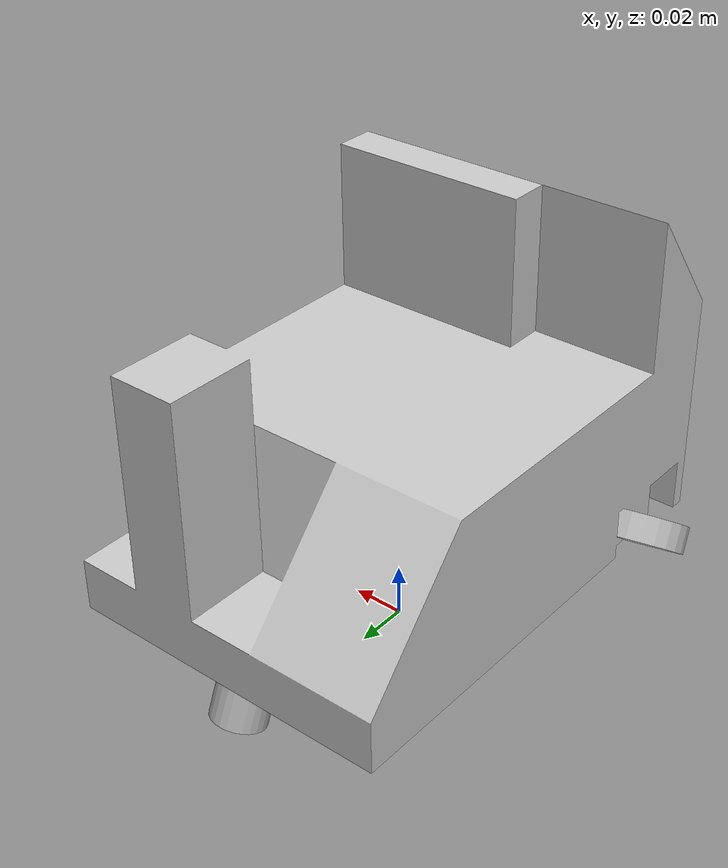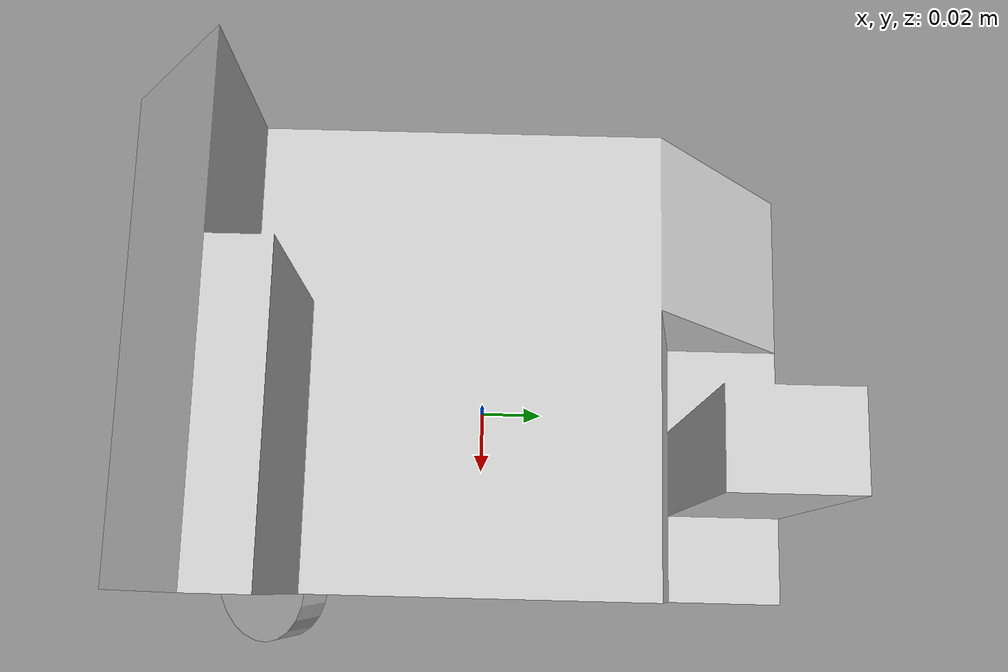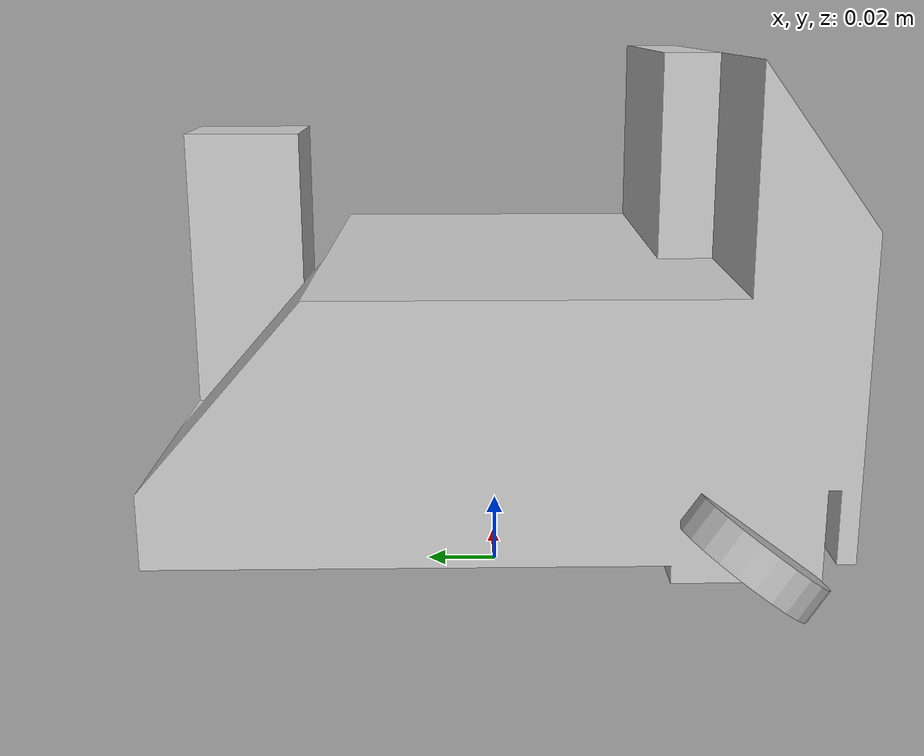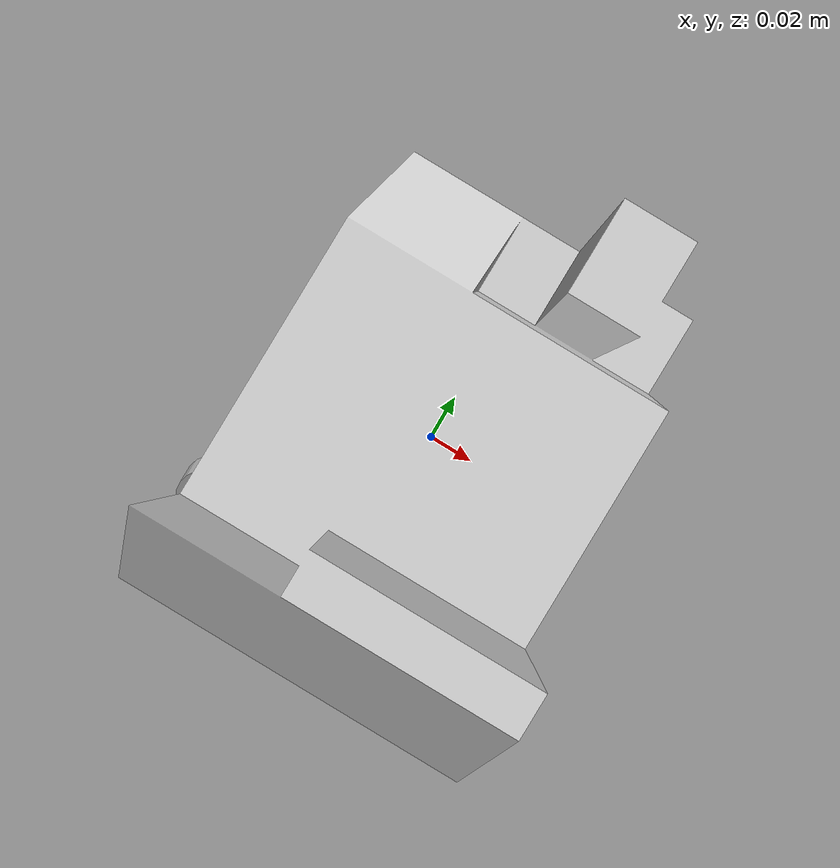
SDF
<sdf version='1.6'>
  <model name='karcher_urdf'>
    <link name='chassis'>
      <pose frame=''>0 0 0 0 -0 0</pose>
      <inertial>
        <pose frame=''>0 0 0 0 -0 0</pose>
        <mass>725</mass>
        <inertia>
          <ixx>322.8</ixx>
          <ixy>0</ixy>
          <ixz>0</ixz>
          <iyy>221.43</iyy>
          <iyz>0</iyz>
          <izz>290.15</izz>
        </inertia>
      </inertial>
      <collision name='chassis_collision_collision'>
        <pose frame=''>0 0 0.09 0 -0 0</pose>
        <geometry>
          <mesh>
            <scale>0.1 0.1 0.1</scale>
            <uri>model://karcher_urdf/meshes/karcher_model.dae</uri>
          </mesh>
        </geometry>
      </collision>
      <visual name='chassis_visual_visual'>
        <pose frame=''>0 0 0.09 0 -0 0</pose>
        <geometry>
          <mesh>
            <scale>0.1 0.1 0.1</scale>
            <uri>model://karcher_urdf/meshes/karcher_model.dae</uri>
          </mesh>
        </geometry>
      </visual>
    </link>
    <link name='front_dummy_link'>
      <pose frame=''>0 0.08 0.0175 0 0.000019 0</pose>
      <inertial>
        <pose frame=''>0 0 0 0 -0 0</pose>
        <mass>0.1</mass>
        <inertia>
          <ixx>0</ixx>
          <ixy>0</ixy>
          <ixz>0</ixz>
          <iyy>0</iyy>
          <iyz>0</iyz>
          <izz>0</izz>
        </inertia>
      </inertial>
    </link>
    <joint name='front_steer_joint' type='revolute'>
      <child>front_dummy_link</child>
      <parent>chassis</parent>
      <axis>
        <xyz>0.000019 0 1</xyz>
        <limit>
          <lower>-1.5707</lower>
          <upper>1.5707</upper>
          <effort>1000</effort>
          <velocity>100</velocity>
        </limit>
        <dynamics>
          <spring_reference>0</spring_reference>
          <spring_stiffness>0</spring_stiffness>
        </dynamics>
        <use_parent_model_frame>1</use_parent_model_frame>
      </axis>
    </joint>
    <link name='front_wheel'>
      <pose frame=''>0 0.08 0.0175 0 0.000019 0</pose>
      <inertial>
        <pose frame=''>0 0 0 0 -0 0</pose>
        <mass>5</mass>
        <inertia>
          <ixx>0.02917</ixx>
          <ixy>0</ixy>
          <ixz>0</ixz>
          <iyy>0.02917</iyy>
          <iyz>0</iyz>
          <izz>0.025</izz>
        </inertia>
      </inertial>
      <collision name='front_wheel_collision_collision'>
        <pose frame=''>0 0 0 0.314159 -0.157079 0.314159</pose>
        <geometry>
          <sphere>
            <radius>0.01</radius>
          </sphere>
        </geometry>
      </collision>
      <visual name='front_wheel_visual_visual'>
        <pose frame=''>0 0 0 0.314159 -0.157079 0.314159</pose>
        <geometry>
          <cylinder>
            <length>0.02</length>
            <radius>0.01</radius>
          </cylinder>
        </geometry>
      </visual>
    </link>
    <joint name='front_wheel_joint' type='revolute'>
      <child>front_wheel</child>
      <parent>front_dummy_link</parent>
      <axis>
        <xyz>0.1 0 -0.000019</xyz>
        <limit>
          <lower>-1e+16</lower>
          <upper>1e+16</upper>
        </limit>
        <dynamics>
          <spring_reference>0</spring_reference>
          <spring_stiffness>0</spring_stiffness>
        </dynamics>
        <use_parent_model_frame>1</use_parent_model_frame>
      </axis>
    </joint>
    <link name='rear_left_wheel'>
      <pose frame=''>-0.05742 -0.065 0.0275 0.314159 0.000019 0.314159</pose>
      <inertial>
        <pose frame=''>0 0 0 0 -0 0</pose>
        <mass>10</mass>
        <inertia>
          <ixx>0.325</ixx>
          <ixy>0</ixy>
          <ixz>0</ixz>
          <iyy>0.325</iyy>
          <iyz>0</iyz>
          <izz>0.5354</izz>
        </inertia>
      </inertial>
      <collision name='rear_left_wheel_collision_collision'>
        <pose frame=''>0 0 0 0.314159 -0.157079 0.314159</pose>
        <geometry>
          <sphere>
            <radius>0.02</radius>
          </sphere>
        </geometry>
      </collision>
      <visual name='rear_left_wheel_visual_visual'>
        <pose frame=''>0 0 0 0.314159 -0.157079 0.314159</pose>
        <geometry>
          <cylinder>
            <length>0.01016</length>
            <radius>0.02</radius>
          </cylinder>
        </geometry>
      </visual>
    </link>
    <joint name='rear_left_wheel_joint' type='revolute'>
      <child>rear_left_wheel</child>
      <parent>chassis</parent>
      <axis>
        <xyz>-0.1 3e-07 -0.000019</xyz>
        <limit>
          <lower>-1e+16</lower>
          <upper>1e+16</upper>
        </limit>
        <dynamics>
          <spring_reference>0</spring_reference>
          <spring_stiffness>0</spring_stiffness>
        </dynamics>
        <use_parent_model_frame>1</use_parent_model_frame>
      </axis>
    </joint>
    <link name='rear_right_wheel'>
      <pose frame=''>0.05742 -0.065 0.0275 0.314159 0.000019 0.314159</pose>
      <inertial>
        <pose frame=''>0 0 0 0 -0 0</pose>
        <mass>10</mass>
        <inertia>
          <ixx>0.325</ixx>
          <ixy>0</ixy>
          <ixz>0</ixz>
          <iyy>0.325</iyy>
          <iyz>0</iyz>
          <izz>0.5354</izz>
        </inertia>
      </inertial>
      <collision name='rear_right_wheel_collision_collision'>
        <pose frame=''>0 0 0 0.314159 -0.157079 0.314159</pose>
        <geometry>
          <sphere>
            <radius>0.02</radius>
          </sphere>
        </geometry>
      </collision>
      <visual name='rear_right_wheel_visual_visual'>
        <pose frame=''>0 0 0 0.314159 -0.157079 0.314159</pose>
        <geometry>
          <cylinder>
            <length>0.01016</length>
            <radius>0.02</radius>
          </cylinder>
        </geometry>
      </visual>
    </link>
    <joint name='rear_right_wheel_joint' type='revolute'>
      <child>rear_right_wheel</child>
      <parent>chassis</parent>
      <axis>
        <xyz>-0.1 3e-07 -0.000019</xyz>
        <limit>
          <lower>-1e+16</lower>
          <upper>1e+16</upper>
        </limit>
        <dynamics>
          <spring_reference>0</spring_reference>
          <spring_stiffness>0</spring_stiffness>
        </dynamics>
        <use_parent_model_frame>1</use_parent_model_frame>
      </axis>
    </joint>
    <static>0</static>
    <plugin name='KarcherUrdfPlugin' filename='libKarcherUrdfPlugin.so'>
      <max_steer>0.442</max_steer>
      <max_speed>1.5278</max_speed>
      <fwheel_steering_p_gain>3</fwheel_steering_p_gain>
      <fwheel_steering_i_gain>4</fwheel_steering_i_gain>
      <fwheel_steering_d_gain>1</fwheel_steering_d_gain>
      <chassis_aero_force_gain>0.63045</chassis_aero_force_gain>
      <front_torque>0</front_torque>
      <back_torque>200</back_torque>
      <front_brake_torque>0</front_brake_torque>
      <back_brake_torque>200</back_brake_torque>
      <wheel_base>1.006</wheel_base>
      <rear_track>1.1494</rear_track>
    </plugin>
    <plugin name='gazebo_ros_control' filename='libgazebo_ros_control.so'>
      <robotNamespace>/karcher_urdf</robotNamespace>
    </plugin>
  </model>
</sdf>
